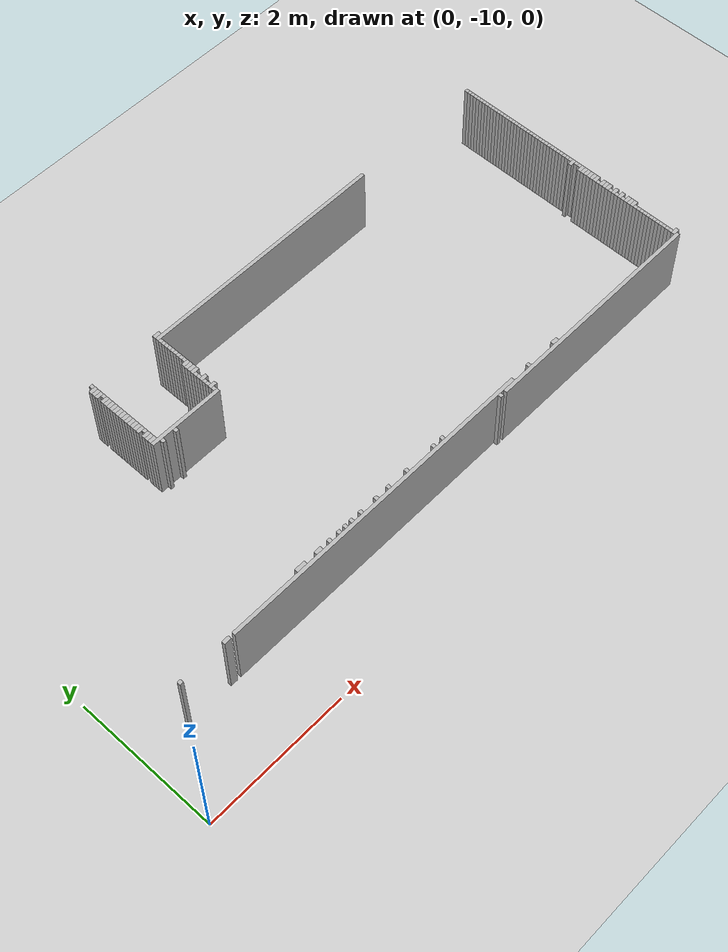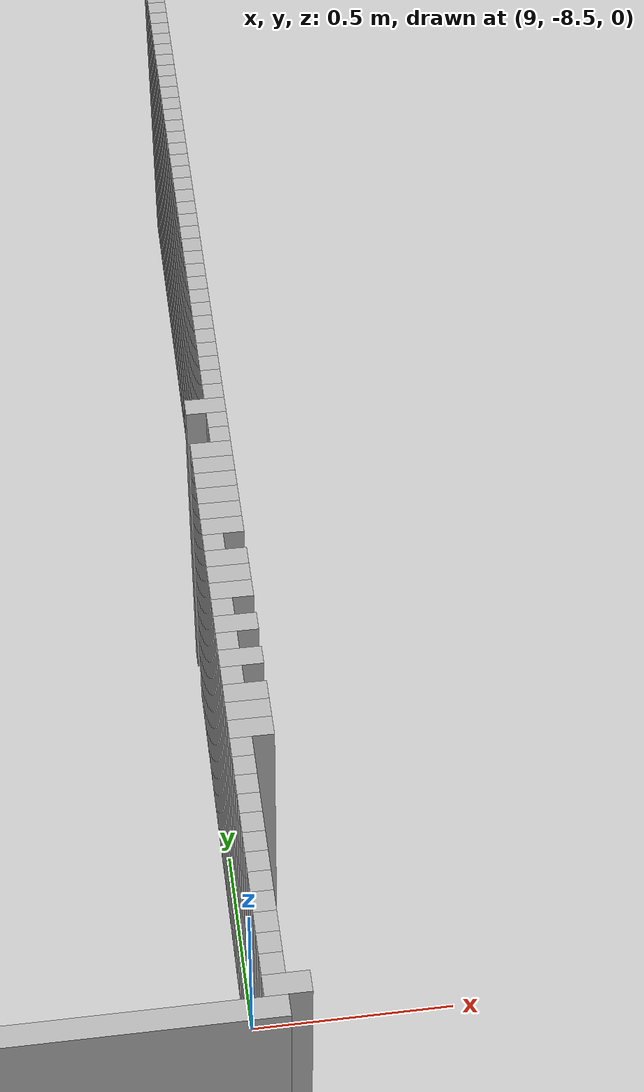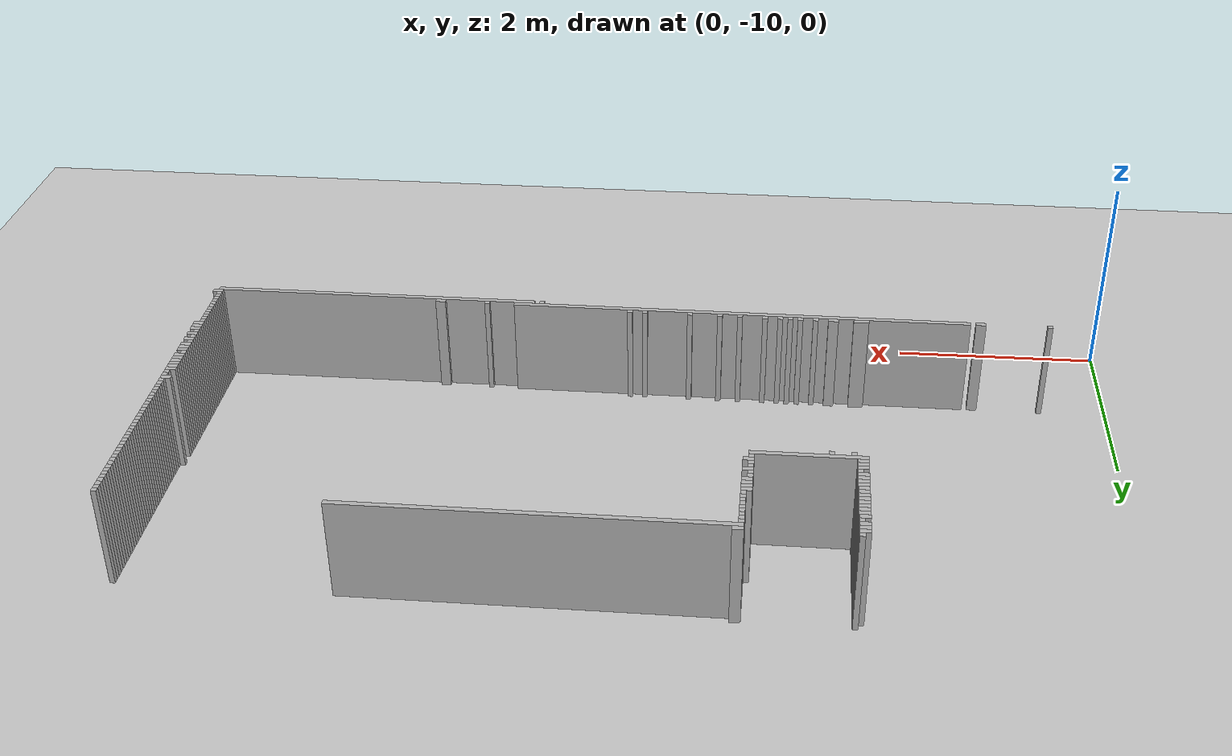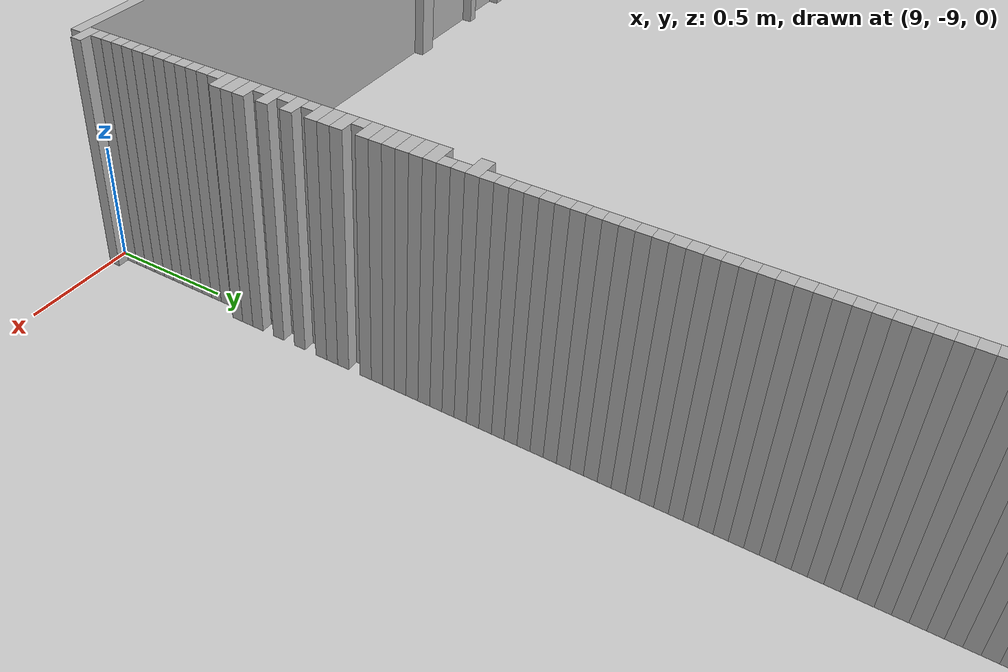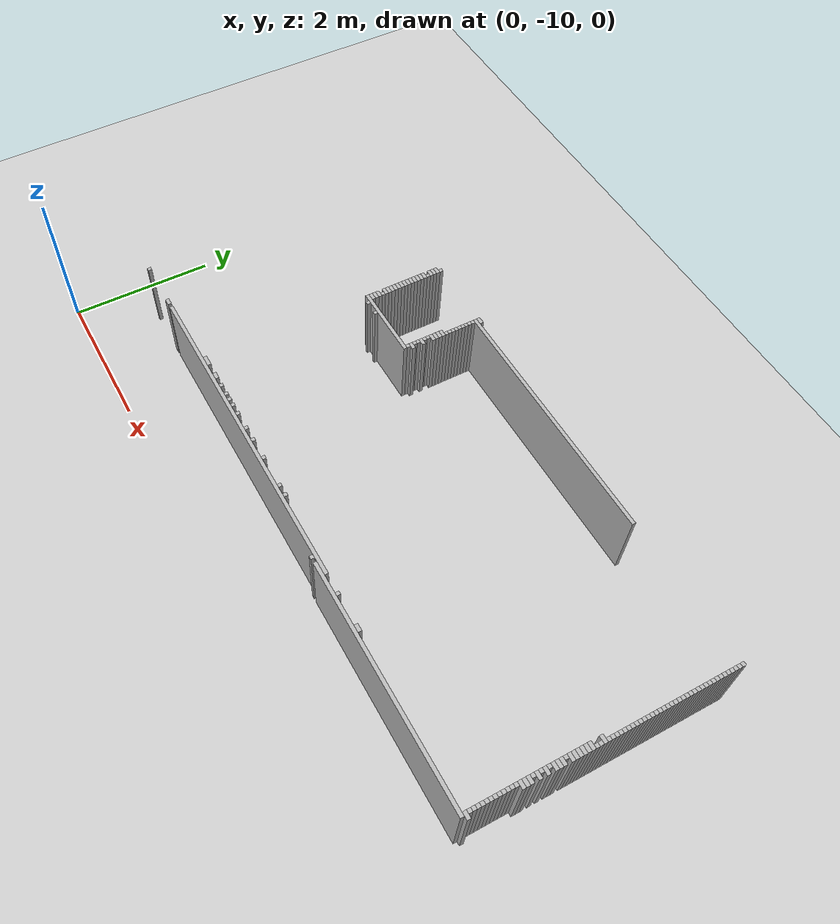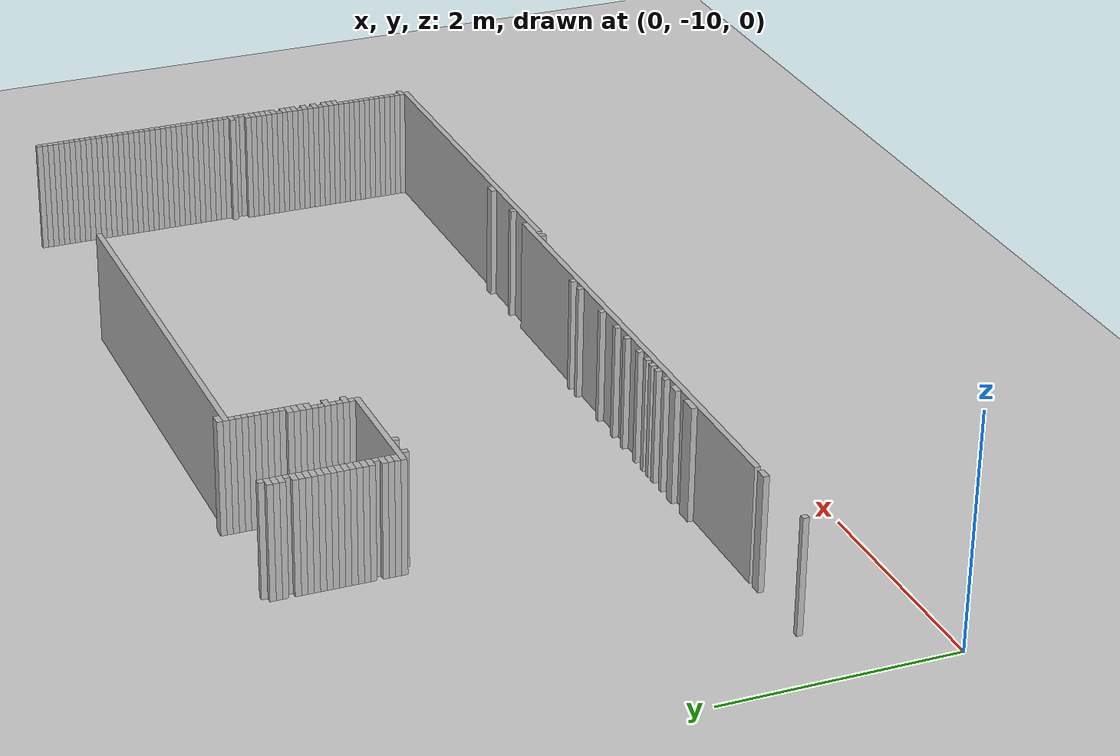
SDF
<sdf version="1.6">
 <world name="udh1_world">
  <include><uri>model://ground_plane</uri></include>
  <include><uri>model://sun</uri></include>
  <model name="wall_2132">
   <static>true</static>
   <pose>2.5550000000000015 -5.48 0.5 0 0 0</pose>
   <link name="link">
    <collision name="col"><geometry><box><size>0.05 0.05 1</size></box></geometry></collision>
    <visual name="vis"><geometry><box><size>0.05 0.05 1</size></box></geometry></visual>
   </link>
  </model>
  <model name="wall_2133">
   <static>true</static>
   <pose>3.580000000000002 -5.48 0.5 0 0 0</pose>
   <link name="link">
    <collision name="col"><geometry><box><size>0.1 0.05 1</size></box></geometry></collision>
    <visual name="vis"><geometry><box><size>0.1 0.05 1</size></box></geometry></visual>
   </link>
  </model>
  <model name="wall_2143">
   <static>true</static>
   <pose>2.530000000000001 -5.530000000000001 0.5 0 0 0</pose>
   <link name="link">
    <collision name="col"><geometry><box><size>0.1 0.05 1</size></box></geometry></collision>
    <visual name="vis"><geometry><box><size>0.1 0.05 1</size></box></geometry></visual>
   </link>
  </model>
  <model name="wall_2144">
   <static>true</static>
   <pose>5.3050000000000015 -5.530000000000001 0.5 0 0 0</pose>
   <link name="link">
    <collision name="col"><geometry><box><size>3.5500000000000003 0.05 1</size></box></geometry></collision>
    <visual name="vis"><geometry><box><size>3.5500000000000003 0.05 1</size></box></geometry></visual>
   </link>
  </model>
  <model name="wall_2145">
   <static>true</static>
   <pose>9.055 -5.530000000000001 0.5 0 0 0</pose>
   <link name="link">
    <collision name="col"><geometry><box><size>0.05 0.05 1</size></box></geometry></collision>
    <visual name="vis"><geometry><box><size>0.05 0.05 1</size></box></geometry></visual>
   </link>
  </model>
  <model name="wall_2151">
   <static>true</static>
   <pose>2.530000000000001 -5.58 0.5 0 0 0</pose>
   <link name="link">
    <collision name="col"><geometry><box><size>0.1 0.05 1</size></box></geometry></collision>
    <visual name="vis"><geometry><box><size>0.1 0.05 1</size></box></geometry></visual>
   </link>
  </model>
  <model name="wall_2152">
   <static>true</static>
   <pose>3.5550000000000015 -5.58 0.5 0 0 0</pose>
   <link name="link">
    <collision name="col"><geometry><box><size>0.05 0.05 1</size></box></geometry></collision>
    <visual name="vis"><geometry><box><size>0.05 0.05 1</size></box></geometry></visual>
   </link>
  </model>
  <model name="wall_2153">
   <static>true</static>
   <pose>9.055 -5.58 0.5 0 0 0</pose>
   <link name="link">
    <collision name="col"><geometry><box><size>0.05 0.05 1</size></box></geometry></collision>
    <visual name="vis"><geometry><box><size>0.05 0.05 1</size></box></geometry></visual>
   </link>
  </model>
  <model name="wall_2159">
   <static>true</static>
   <pose>2.530000000000001 -5.630000000000001 0.5 0 0 0</pose>
   <link name="link">
    <collision name="col"><geometry><box><size>0.1 0.05 1</size></box></geometry></collision>
    <visual name="vis"><geometry><box><size>0.1 0.05 1</size></box></geometry></visual>
   </link>
  </model>
  <model name="wall_2160">
   <static>true</static>
   <pose>3.5550000000000015 -5.630000000000001 0.5 0 0 0</pose>
   <link name="link">
    <collision name="col"><geometry><box><size>0.05 0.05 1</size></box></geometry></collision>
    <visual name="vis"><geometry><box><size>0.05 0.05 1</size></box></geometry></visual>
   </link>
  </model>
  <model name="wall_2161">
   <static>true</static>
   <pose>9.055 -5.630000000000001 0.5 0 0 0</pose>
   <link name="link">
    <collision name="col"><geometry><box><size>0.05 0.05 1</size></box></geometry></collision>
    <visual name="vis"><geometry><box><size>0.05 0.05 1</size></box></geometry></visual>
   </link>
  </model>
  <model name="wall_2167">
   <static>true</static>
   <pose>2.5550000000000015 -5.680000000000001 0.5 0 0 0</pose>
   <link name="link">
    <collision name="col"><geometry><box><size>0.05 0.05 1</size></box></geometry></collision>
    <visual name="vis"><geometry><box><size>0.05 0.05 1</size></box></geometry></visual>
   </link>
  </model>
  <model name="wall_2168">
   <static>true</static>
   <pose>3.5550000000000015 -5.680000000000001 0.5 0 0 0</pose>
   <link name="link">
    <collision name="col"><geometry><box><size>0.05 0.05 1</size></box></geometry></collision>
    <visual name="vis"><geometry><box><size>0.05 0.05 1</size></box></geometry></visual>
   </link>
  </model>
  <model name="wall_2169">
   <static>true</static>
   <pose>9.055 -5.680000000000001 0.5 0 0 0</pose>
   <link name="link">
    <collision name="col"><geometry><box><size>0.05 0.05 1</size></box></geometry></collision>
    <visual name="vis"><geometry><box><size>0.05 0.05 1</size></box></geometry></visual>
   </link>
  </model>
  <model name="wall_2175">
   <static>true</static>
   <pose>2.530000000000001 -5.73 0.5 0 0 0</pose>
   <link name="link">
    <collision name="col"><geometry><box><size>0.1 0.05 1</size></box></geometry></collision>
    <visual name="vis"><geometry><box><size>0.1 0.05 1</size></box></geometry></visual>
   </link>
  </model>
  <model name="wall_2176">
   <static>true</static>
   <pose>3.5550000000000015 -5.73 0.5 0 0 0</pose>
   <link name="link">
    <collision name="col"><geometry><box><size>0.05 0.05 1</size></box></geometry></collision>
    <visual name="vis"><geometry><box><size>0.05 0.05 1</size></box></geometry></visual>
   </link>
  </model>
  <model name="wall_2177">
   <static>true</static>
   <pose>9.055 -5.73 0.5 0 0 0</pose>
   <link name="link">
    <collision name="col"><geometry><box><size>0.05 0.05 1</size></box></geometry></collision>
    <visual name="vis"><geometry><box><size>0.05 0.05 1</size></box></geometry></visual>
   </link>
  </model>
  <model name="wall_2183">
   <static>true</static>
   <pose>2.530000000000001 -5.780000000000001 0.5 0 0 0</pose>
   <link name="link">
    <collision name="col"><geometry><box><size>0.1 0.05 1</size></box></geometry></collision>
    <visual name="vis"><geometry><box><size>0.1 0.05 1</size></box></geometry></visual>
   </link>
  </model>
  <model name="wall_2184">
   <static>true</static>
   <pose>3.5550000000000015 -5.780000000000001 0.5 0 0 0</pose>
   <link name="link">
    <collision name="col"><geometry><box><size>0.05 0.05 1</size></box></geometry></collision>
    <visual name="vis"><geometry><box><size>0.05 0.05 1</size></box></geometry></visual>
   </link>
  </model>
  <model name="wall_2185">
   <static>true</static>
   <pose>9.055 -5.780000000000001 0.5 0 0 0</pose>
   <link name="link">
    <collision name="col"><geometry><box><size>0.05 0.05 1</size></box></geometry></collision>
    <visual name="vis"><geometry><box><size>0.05 0.05 1</size></box></geometry></visual>
   </link>
  </model>
  <model name="wall_2191">
   <static>true</static>
   <pose>2.530000000000001 -5.83 0.5 0 0 0</pose>
   <link name="link">
    <collision name="col"><geometry><box><size>0.1 0.05 1</size></box></geometry></collision>
    <visual name="vis"><geometry><box><size>0.1 0.05 1</size></box></geometry></visual>
   </link>
  </model>
  <model name="wall_2192">
   <static>true</static>
   <pose>3.5550000000000015 -5.83 0.5 0 0 0</pose>
   <link name="link">
    <collision name="col"><geometry><box><size>0.05 0.05 1</size></box></geometry></collision>
    <visual name="vis"><geometry><box><size>0.05 0.05 1</size></box></geometry></visual>
   </link>
  </model>
  <model name="wall_2193">
   <static>true</static>
   <pose>9.055 -5.83 0.5 0 0 0</pose>
   <link name="link">
    <collision name="col"><geometry><box><size>0.05 0.05 1</size></box></geometry></collision>
    <visual name="vis"><geometry><box><size>0.05 0.05 1</size></box></geometry></visual>
   </link>
  </model>
  <model name="wall_2199">
   <static>true</static>
   <pose>2.530000000000001 -5.880000000000001 0.5 0 0 0</pose>
   <link name="link">
    <collision name="col"><geometry><box><size>0.1 0.05 1</size></box></geometry></collision>
    <visual name="vis"><geometry><box><size>0.1 0.05 1</size></box></geometry></visual>
   </link>
  </model>
  <model name="wall_2200">
   <static>true</static>
   <pose>3.5550000000000015 -5.880000000000001 0.5 0 0 0</pose>
   <link name="link">
    <collision name="col"><geometry><box><size>0.05 0.05 1</size></box></geometry></collision>
    <visual name="vis"><geometry><box><size>0.05 0.05 1</size></box></geometry></visual>
   </link>
  </model>
  <model name="wall_2201">
   <static>true</static>
   <pose>9.055 -5.880000000000001 0.5 0 0 0</pose>
   <link name="link">
    <collision name="col"><geometry><box><size>0.05 0.05 1</size></box></geometry></collision>
    <visual name="vis"><geometry><box><size>0.05 0.05 1</size></box></geometry></visual>
   </link>
  </model>
  <model name="wall_2207">
   <static>true</static>
   <pose>2.530000000000001 -5.930000000000001 0.5 0 0 0</pose>
   <link name="link">
    <collision name="col"><geometry><box><size>0.1 0.05 1</size></box></geometry></collision>
    <visual name="vis"><geometry><box><size>0.1 0.05 1</size></box></geometry></visual>
   </link>
  </model>
  <model name="wall_2208">
   <static>true</static>
   <pose>3.5550000000000015 -5.930000000000001 0.5 0 0 0</pose>
   <link name="link">
    <collision name="col"><geometry><box><size>0.05 0.05 1</size></box></geometry></collision>
    <visual name="vis"><geometry><box><size>0.05 0.05 1</size></box></geometry></visual>
   </link>
  </model>
  <model name="wall_2209">
   <static>true</static>
   <pose>9.055 -5.930000000000001 0.5 0 0 0</pose>
   <link name="link">
    <collision name="col"><geometry><box><size>0.05 0.05 1</size></box></geometry></collision>
    <visual name="vis"><geometry><box><size>0.05 0.05 1</size></box></geometry></visual>
   </link>
  </model>
  <model name="wall_2215">
   <static>true</static>
   <pose>2.530000000000001 -5.98 0.5 0 0 0</pose>
   <link name="link">
    <collision name="col"><geometry><box><size>0.1 0.05 1</size></box></geometry></collision>
    <visual name="vis"><geometry><box><size>0.1 0.05 1</size></box></geometry></visual>
   </link>
  </model>
  <model name="wall_2216">
   <static>true</static>
   <pose>3.5550000000000015 -5.98 0.5 0 0 0</pose>
   <link name="link">
    <collision name="col"><geometry><box><size>0.05 0.05 1</size></box></geometry></collision>
    <visual name="vis"><geometry><box><size>0.05 0.05 1</size></box></geometry></visual>
   </link>
  </model>
  <model name="wall_2217">
   <static>true</static>
   <pose>9.055 -5.98 0.5 0 0 0</pose>
   <link name="link">
    <collision name="col"><geometry><box><size>0.05 0.05 1</size></box></geometry></collision>
    <visual name="vis"><geometry><box><size>0.05 0.05 1</size></box></geometry></visual>
   </link>
  </model>
  <model name="wall_2223">
   <static>true</static>
   <pose>2.530000000000001 -6.030000000000001 0.5 0 0 0</pose>
   <link name="link">
    <collision name="col"><geometry><box><size>0.1 0.05 1</size></box></geometry></collision>
    <visual name="vis"><geometry><box><size>0.1 0.05 1</size></box></geometry></visual>
   </link>
  </model>
  <model name="wall_2224">
   <static>true</static>
   <pose>3.530000000000001 -6.030000000000001 0.5 0 0 0</pose>
   <link name="link">
    <collision name="col"><geometry><box><size>0.1 0.05 1</size></box></geometry></collision>
    <visual name="vis"><geometry><box><size>0.1 0.05 1</size></box></geometry></visual>
   </link>
  </model>
  <model name="wall_2225">
   <static>true</static>
   <pose>9.055 -6.030000000000001 0.5 0 0 0</pose>
   <link name="link">
    <collision name="col"><geometry><box><size>0.05 0.05 1</size></box></geometry></collision>
    <visual name="vis"><geometry><box><size>0.05 0.05 1</size></box></geometry></visual>
   </link>
  </model>
  <model name="wall_2231">
   <static>true</static>
   <pose>2.530000000000001 -6.08 0.5 0 0 0</pose>
   <link name="link">
    <collision name="col"><geometry><box><size>0.1 0.05 1</size></box></geometry></collision>
    <visual name="vis"><geometry><box><size>0.1 0.05 1</size></box></geometry></visual>
   </link>
  </model>
  <model name="wall_2232">
   <static>true</static>
   <pose>3.530000000000001 -6.08 0.5 0 0 0</pose>
   <link name="link">
    <collision name="col"><geometry><box><size>0.1 0.05 1</size></box></geometry></collision>
    <visual name="vis"><geometry><box><size>0.1 0.05 1</size></box></geometry></visual>
   </link>
  </model>
  <model name="wall_2233">
   <static>true</static>
   <pose>9.055 -6.08 0.5 0 0 0</pose>
   <link name="link">
    <collision name="col"><geometry><box><size>0.05 0.05 1</size></box></geometry></collision>
    <visual name="vis"><geometry><box><size>0.05 0.05 1</size></box></geometry></visual>
   </link>
  </model>
  <model name="wall_2239">
   <static>true</static>
   <pose>2.530000000000001 -6.130000000000001 0.5 0 0 0</pose>
   <link name="link">
    <collision name="col"><geometry><box><size>0.1 0.05 1</size></box></geometry></collision>
    <visual name="vis"><geometry><box><size>0.1 0.05 1</size></box></geometry></visual>
   </link>
  </model>
  <model name="wall_2240">
   <static>true</static>
   <pose>3.530000000000001 -6.130000000000001 0.5 0 0 0</pose>
   <link name="link">
    <collision name="col"><geometry><box><size>0.1 0.05 1</size></box></geometry></collision>
    <visual name="vis"><geometry><box><size>0.1 0.05 1</size></box></geometry></visual>
   </link>
  </model>
  <model name="wall_2241">
   <static>true</static>
   <pose>9.055 -6.130000000000001 0.5 0 0 0</pose>
   <link name="link">
    <collision name="col"><geometry><box><size>0.05 0.05 1</size></box></geometry></collision>
    <visual name="vis"><geometry><box><size>0.05 0.05 1</size></box></geometry></visual>
   </link>
  </model>
  <model name="wall_2247">
   <static>true</static>
   <pose>2.530000000000001 -6.180000000000001 0.5 0 0 0</pose>
   <link name="link">
    <collision name="col"><geometry><box><size>0.1 0.05 1</size></box></geometry></collision>
    <visual name="vis"><geometry><box><size>0.1 0.05 1</size></box></geometry></visual>
   </link>
  </model>
  <model name="wall_2248">
   <static>true</static>
   <pose>3.530000000000001 -6.180000000000001 0.5 0 0 0</pose>
   <link name="link">
    <collision name="col"><geometry><box><size>0.1 0.05 1</size></box></geometry></collision>
    <visual name="vis"><geometry><box><size>0.1 0.05 1</size></box></geometry></visual>
   </link>
  </model>
  <model name="wall_2249">
   <static>true</static>
   <pose>9.055 -6.180000000000001 0.5 0 0 0</pose>
   <link name="link">
    <collision name="col"><geometry><box><size>0.05 0.05 1</size></box></geometry></collision>
    <visual name="vis"><geometry><box><size>0.05 0.05 1</size></box></geometry></visual>
   </link>
  </model>
  <model name="wall_2255">
   <static>true</static>
   <pose>2.530000000000001 -6.23 0.5 0 0 0</pose>
   <link name="link">
    <collision name="col"><geometry><box><size>0.1 0.05 1</size></box></geometry></collision>
    <visual name="vis"><geometry><box><size>0.1 0.05 1</size></box></geometry></visual>
   </link>
  </model>
  <model name="wall_2256">
   <static>true</static>
   <pose>3.505000000000001 -6.23 0.5 0 0 0</pose>
   <link name="link">
    <collision name="col"><geometry><box><size>0.05 0.05 1</size></box></geometry></collision>
    <visual name="vis"><geometry><box><size>0.05 0.05 1</size></box></geometry></visual>
   </link>
  </model>
  <model name="wall_2257">
   <static>true</static>
   <pose>9.055 -6.23 0.5 0 0 0</pose>
   <link name="link">
    <collision name="col"><geometry><box><size>0.05 0.05 1</size></box></geometry></collision>
    <visual name="vis"><geometry><box><size>0.05 0.05 1</size></box></geometry></visual>
   </link>
  </model>
  <model name="wall_2263">
   <static>true</static>
   <pose>2.530000000000001 -6.280000000000001 0.5 0 0 0</pose>
   <link name="link">
    <collision name="col"><geometry><box><size>0.1 0.05 1</size></box></geometry></collision>
    <visual name="vis"><geometry><box><size>0.1 0.05 1</size></box></geometry></visual>
   </link>
  </model>
  <model name="wall_2264">
   <static>true</static>
   <pose>3.505000000000001 -6.280000000000001 0.5 0 0 0</pose>
   <link name="link">
    <collision name="col"><geometry><box><size>0.05 0.05 1</size></box></geometry></collision>
    <visual name="vis"><geometry><box><size>0.05 0.05 1</size></box></geometry></visual>
   </link>
  </model>
  <model name="wall_2265">
   <static>true</static>
   <pose>9.055 -6.280000000000001 0.5 0 0 0</pose>
   <link name="link">
    <collision name="col"><geometry><box><size>0.05 0.05 1</size></box></geometry></collision>
    <visual name="vis"><geometry><box><size>0.05 0.05 1</size></box></geometry></visual>
   </link>
  </model>
  <model name="wall_2271">
   <static>true</static>
   <pose>2.530000000000001 -6.33 0.5 0 0 0</pose>
   <link name="link">
    <collision name="col"><geometry><box><size>0.1 0.05 1</size></box></geometry></collision>
    <visual name="vis"><geometry><box><size>0.1 0.05 1</size></box></geometry></visual>
   </link>
  </model>
  <model name="wall_2272">
   <static>true</static>
   <pose>3.530000000000001 -6.33 0.5 0 0 0</pose>
   <link name="link">
    <collision name="col"><geometry><box><size>0.1 0.05 1</size></box></geometry></collision>
    <visual name="vis"><geometry><box><size>0.1 0.05 1</size></box></geometry></visual>
   </link>
  </model>
  <model name="wall_2273">
   <static>true</static>
   <pose>9.055 -6.33 0.5 0 0 0</pose>
   <link name="link">
    <collision name="col"><geometry><box><size>0.05 0.05 1</size></box></geometry></collision>
    <visual name="vis"><geometry><box><size>0.05 0.05 1</size></box></geometry></visual>
   </link>
  </model>
  <model name="wall_2279">
   <static>true</static>
   <pose>2.5550000000000015 -6.380000000000001 0.5 0 0 0</pose>
   <link name="link">
    <collision name="col"><geometry><box><size>0.05 0.05 1</size></box></geometry></collision>
    <visual name="vis"><geometry><box><size>0.05 0.05 1</size></box></geometry></visual>
   </link>
  </model>
  <model name="wall_2280">
   <static>true</static>
   <pose>3.505000000000001 -6.380000000000001 0.5 0 0 0</pose>
   <link name="link">
    <collision name="col"><geometry><box><size>0.05 0.05 1</size></box></geometry></collision>
    <visual name="vis"><geometry><box><size>0.05 0.05 1</size></box></geometry></visual>
   </link>
  </model>
  <model name="wall_2281">
   <static>true</static>
   <pose>9.055 -6.380000000000001 0.5 0 0 0</pose>
   <link name="link">
    <collision name="col"><geometry><box><size>0.05 0.05 1</size></box></geometry></collision>
    <visual name="vis"><geometry><box><size>0.05 0.05 1</size></box></geometry></visual>
   </link>
  </model>
  <model name="wall_2286">
   <static>true</static>
   <pose>2.530000000000001 -6.430000000000001 0.5 0 0 0</pose>
   <link name="link">
    <collision name="col"><geometry><box><size>0.1 0.05 1</size></box></geometry></collision>
    <visual name="vis"><geometry><box><size>0.1 0.05 1</size></box></geometry></visual>
   </link>
  </model>
  <model name="wall_2287">
   <static>true</static>
   <pose>3.505000000000001 -6.430000000000001 0.5 0 0 0</pose>
   <link name="link">
    <collision name="col"><geometry><box><size>0.05 0.05 1</size></box></geometry></collision>
    <visual name="vis"><geometry><box><size>0.05 0.05 1</size></box></geometry></visual>
   </link>
  </model>
  <model name="wall_2288">
   <static>true</static>
   <pose>9.055 -6.430000000000001 0.5 0 0 0</pose>
   <link name="link">
    <collision name="col"><geometry><box><size>0.05 0.05 1</size></box></geometry></collision>
    <visual name="vis"><geometry><box><size>0.05 0.05 1</size></box></geometry></visual>
   </link>
  </model>
  <model name="wall_2292">
   <static>true</static>
   <pose>2.530000000000001 -6.48 0.5 0 0 0</pose>
   <link name="link">
    <collision name="col"><geometry><box><size>0.1 0.05 1</size></box></geometry></collision>
    <visual name="vis"><geometry><box><size>0.1 0.05 1</size></box></geometry></visual>
   </link>
  </model>
  <model name="wall_2293">
   <static>true</static>
   <pose>3.530000000000001 -6.48 0.5 0 0 0</pose>
   <link name="link">
    <collision name="col"><geometry><box><size>0.1 0.05 1</size></box></geometry></collision>
    <visual name="vis"><geometry><box><size>0.1 0.05 1</size></box></geometry></visual>
   </link>
  </model>
  <model name="wall_2294">
   <static>true</static>
   <pose>9.055 -6.48 0.5 0 0 0</pose>
   <link name="link">
    <collision name="col"><geometry><box><size>0.05 0.05 1</size></box></geometry></collision>
    <visual name="vis"><geometry><box><size>0.05 0.05 1</size></box></geometry></visual>
   </link>
  </model>
  <model name="wall_2298">
   <static>true</static>
   <pose>2.530000000000001 -6.530000000000001 0.5 0 0 0</pose>
   <link name="link">
    <collision name="col"><geometry><box><size>0.1 0.05 1</size></box></geometry></collision>
    <visual name="vis"><geometry><box><size>0.1 0.05 1</size></box></geometry></visual>
   </link>
  </model>
  <model name="wall_2299">
   <static>true</static>
   <pose>3.505000000000001 -6.530000000000001 0.5 0 0 0</pose>
   <link name="link">
    <collision name="col"><geometry><box><size>0.05 0.05 1</size></box></geometry></collision>
    <visual name="vis"><geometry><box><size>0.05 0.05 1</size></box></geometry></visual>
   </link>
  </model>
  <model name="wall_2300">
   <static>true</static>
   <pose>9.055 -6.530000000000001 0.5 0 0 0</pose>
   <link name="link">
    <collision name="col"><geometry><box><size>0.05 0.05 1</size></box></geometry></collision>
    <visual name="vis"><geometry><box><size>0.05 0.05 1</size></box></geometry></visual>
   </link>
  </model>
  <model name="wall_2304">
   <static>true</static>
   <pose>3.005000000000001 -6.58 0.5 0 0 0</pose>
   <link name="link">
    <collision name="col"><geometry><box><size>1.05 0.05 1</size></box></geometry></collision>
    <visual name="vis"><geometry><box><size>1.05 0.05 1</size></box></geometry></visual>
   </link>
  </model>
  <model name="wall_2305">
   <static>true</static>
   <pose>9.055 -6.58 0.5 0 0 0</pose>
   <link name="link">
    <collision name="col"><geometry><box><size>0.05 0.05 1</size></box></geometry></collision>
    <visual name="vis"><geometry><box><size>0.05 0.05 1</size></box></geometry></visual>
   </link>
  </model>
  <model name="wall_2309">
   <static>true</static>
   <pose>2.6050000000000004 -6.630000000000001 0.5 0 0 0</pose>
   <link name="link">
    <collision name="col"><geometry><box><size>0.05 0.05 1</size></box></geometry></collision>
    <visual name="vis"><geometry><box><size>0.05 0.05 1</size></box></geometry></visual>
   </link>
  </model>
  <model name="wall_2310">
   <static>true</static>
   <pose>2.8050000000000015 -6.630000000000001 0.5 0 0 0</pose>
   <link name="link">
    <collision name="col"><geometry><box><size>0.05 0.05 1</size></box></geometry></collision>
    <visual name="vis"><geometry><box><size>0.05 0.05 1</size></box></geometry></visual>
   </link>
  </model>
  <model name="wall_2311">
   <static>true</static>
   <pose>9.055 -6.630000000000001 0.5 0 0 0</pose>
   <link name="link">
    <collision name="col"><geometry><box><size>0.05 0.05 1</size></box></geometry></collision>
    <visual name="vis"><geometry><box><size>0.05 0.05 1</size></box></geometry></visual>
   </link>
  </model>
  <model name="wall_2315">
   <static>true</static>
   <pose>9.055 -6.680000000000001 0.5 0 0 0</pose>
   <link name="link">
    <collision name="col"><geometry><box><size>0.05 0.05 1</size></box></geometry></collision>
    <visual name="vis"><geometry><box><size>0.05 0.05 1</size></box></geometry></visual>
   </link>
  </model>
  <model name="wall_2319">
   <static>true</static>
   <pose>9.055 -6.73 0.5 0 0 0</pose>
   <link name="link">
    <collision name="col"><geometry><box><size>0.05 0.05 1</size></box></geometry></collision>
    <visual name="vis"><geometry><box><size>0.05 0.05 1</size></box></geometry></visual>
   </link>
  </model>
  <model name="wall_2323">
   <static>true</static>
   <pose>9.055 -6.780000000000001 0.5 0 0 0</pose>
   <link name="link">
    <collision name="col"><geometry><box><size>0.05 0.05 1</size></box></geometry></collision>
    <visual name="vis"><geometry><box><size>0.05 0.05 1</size></box></geometry></visual>
   </link>
  </model>
  <model name="wall_2327">
   <static>true</static>
   <pose>9.055 -6.83 0.5 0 0 0</pose>
   <link name="link">
    <collision name="col"><geometry><box><size>0.05 0.05 1</size></box></geometry></collision>
    <visual name="vis"><geometry><box><size>0.05 0.05 1</size></box></geometry></visual>
   </link>
  </model>
  <model name="wall_2333">
   <static>true</static>
   <pose>9.055 -6.880000000000001 0.5 0 0 0</pose>
   <link name="link">
    <collision name="col"><geometry><box><size>0.05 0.05 1</size></box></geometry></collision>
    <visual name="vis"><geometry><box><size>0.05 0.05 1</size></box></geometry></visual>
   </link>
  </model>
  <model name="wall_2338">
   <static>true</static>
   <pose>9.055 -6.930000000000001 0.5 0 0 0</pose>
   <link name="link">
    <collision name="col"><geometry><box><size>0.05 0.05 1</size></box></geometry></collision>
    <visual name="vis"><geometry><box><size>0.05 0.05 1</size></box></geometry></visual>
   </link>
  </model>
  <model name="wall_2344">
   <static>true</static>
   <pose>9.055 -6.98 0.5 0 0 0</pose>
   <link name="link">
    <collision name="col"><geometry><box><size>0.05 0.05 1</size></box></geometry></collision>
    <visual name="vis"><geometry><box><size>0.05 0.05 1</size></box></geometry></visual>
   </link>
  </model>
  <model name="wall_2350">
   <static>true</static>
   <pose>9.055 -7.030000000000001 0.5 0 0 0</pose>
   <link name="link">
    <collision name="col"><geometry><box><size>0.05 0.05 1</size></box></geometry></collision>
    <visual name="vis"><geometry><box><size>0.05 0.05 1</size></box></geometry></visual>
   </link>
  </model>
  <model name="wall_2356">
   <static>true</static>
   <pose>9.055 -7.08 0.5 0 0 0</pose>
   <link name="link">
    <collision name="col"><geometry><box><size>0.05 0.05 1</size></box></geometry></collision>
    <visual name="vis"><geometry><box><size>0.05 0.05 1</size></box></geometry></visual>
   </link>
  </model>
  <model name="wall_2362">
   <static>true</static>
   <pose>9.055 -7.130000000000001 0.5 0 0 0</pose>
   <link name="link">
    <collision name="col"><geometry><box><size>0.05 0.05 1</size></box></geometry></collision>
    <visual name="vis"><geometry><box><size>0.05 0.05 1</size></box></geometry></visual>
   </link>
  </model>
  <model name="wall_2368">
   <static>true</static>
   <pose>9.055 -7.180000000000001 0.5 0 0 0</pose>
   <link name="link">
    <collision name="col"><geometry><box><size>0.05 0.05 1</size></box></geometry></collision>
    <visual name="vis"><geometry><box><size>0.05 0.05 1</size></box></geometry></visual>
   </link>
  </model>
  <model name="wall_2374">
   <static>true</static>
   <pose>9.055 -7.23 0.5 0 0 0</pose>
   <link name="link">
    <collision name="col"><geometry><box><size>0.05 0.05 1</size></box></geometry></collision>
    <visual name="vis"><geometry><box><size>0.05 0.05 1</size></box></geometry></visual>
   </link>
  </model>
  <model name="wall_2380">
   <static>true</static>
   <pose>9.055 -7.280000000000001 0.5 0 0 0</pose>
   <link name="link">
    <collision name="col"><geometry><box><size>0.05 0.05 1</size></box></geometry></collision>
    <visual name="vis"><geometry><box><size>0.05 0.05 1</size></box></geometry></visual>
   </link>
  </model>
  <model name="wall_2386">
   <static>true</static>
   <pose>9.030000000000001 -7.330000000000001 0.5 0 0 0</pose>
   <link name="link">
    <collision name="col"><geometry><box><size>0.1 0.05 1</size></box></geometry></collision>
    <visual name="vis"><geometry><box><size>0.1 0.05 1</size></box></geometry></visual>
   </link>
  </model>
  <model name="wall_2392">
   <static>true</static>
   <pose>9.055 -7.380000000000001 0.5 0 0 0</pose>
   <link name="link">
    <collision name="col"><geometry><box><size>0.05 0.05 1</size></box></geometry></collision>
    <visual name="vis"><geometry><box><size>0.05 0.05 1</size></box></geometry></visual>
   </link>
  </model>
  <model name="wall_2398">
   <static>true</static>
   <pose>9.055 -7.430000000000001 0.5 0 0 0</pose>
   <link name="link">
    <collision name="col"><geometry><box><size>0.05 0.05 1</size></box></geometry></collision>
    <visual name="vis"><geometry><box><size>0.05 0.05 1</size></box></geometry></visual>
   </link>
  </model>
  <model name="wall_2404">
   <static>true</static>
   <pose>9.030000000000001 -7.48 0.5 0 0 0</pose>
   <link name="link">
    <collision name="col"><geometry><box><size>0.1 0.05 1</size></box></geometry></collision>
    <visual name="vis"><geometry><box><size>0.1 0.05 1</size></box></geometry></visual>
   </link>
  </model>
  <model name="wall_2410">
   <static>true</static>
   <pose>9.030000000000001 -7.530000000000001 0.5 0 0 0</pose>
   <link name="link">
    <collision name="col"><geometry><box><size>0.1 0.05 1</size></box></geometry></collision>
    <visual name="vis"><geometry><box><size>0.1 0.05 1</size></box></geometry></visual>
   </link>
  </model>
  <model name="wall_2416">
   <static>true</static>
   <pose>9.030000000000001 -7.580000000000001 0.5 0 0 0</pose>
   <link name="link">
    <collision name="col"><geometry><box><size>0.1 0.05 1</size></box></geometry></collision>
    <visual name="vis"><geometry><box><size>0.1 0.05 1</size></box></geometry></visual>
   </link>
  </model>
  <model name="wall_2422">
   <static>true</static>
   <pose>9.030000000000001 -7.630000000000001 0.5 0 0 0</pose>
   <link name="link">
    <collision name="col"><geometry><box><size>0.1 0.05 1</size></box></geometry></collision>
    <visual name="vis"><geometry><box><size>0.1 0.05 1</size></box></geometry></visual>
   </link>
  </model>
  <model name="wall_2428">
   <static>true</static>
   <pose>9.030000000000001 -7.680000000000001 0.5 0 0 0</pose>
   <link name="link">
    <collision name="col"><geometry><box><size>0.1 0.05 1</size></box></geometry></collision>
    <visual name="vis"><geometry><box><size>0.1 0.05 1</size></box></geometry></visual>
   </link>
  </model>
  <model name="wall_2434">
   <static>true</static>
   <pose>9.030000000000001 -7.73 0.5 0 0 0</pose>
   <link name="link">
    <collision name="col"><geometry><box><size>0.1 0.05 1</size></box></geometry></collision>
    <visual name="vis"><geometry><box><size>0.1 0.05 1</size></box></geometry></visual>
   </link>
  </model>
  <model name="wall_2440">
   <static>true</static>
   <pose>9.005000000000003 -7.780000000000001 0.5 0 0 0</pose>
   <link name="link">
    <collision name="col"><geometry><box><size>0.05 0.05 1</size></box></geometry></collision>
    <visual name="vis"><geometry><box><size>0.05 0.05 1</size></box></geometry></visual>
   </link>
  </model>
  <model name="wall_2446">
   <static>true</static>
   <pose>9.030000000000001 -7.830000000000001 0.5 0 0 0</pose>
   <link name="link">
    <collision name="col"><geometry><box><size>0.1 0.05 1</size></box></geometry></collision>
    <visual name="vis"><geometry><box><size>0.1 0.05 1</size></box></geometry></visual>
   </link>
  </model>
  <model name="wall_2452">
   <static>true</static>
   <pose>9.030000000000001 -7.880000000000001 0.5 0 0 0</pose>
   <link name="link">
    <collision name="col"><geometry><box><size>0.1 0.05 1</size></box></geometry></collision>
    <visual name="vis"><geometry><box><size>0.1 0.05 1</size></box></geometry></visual>
   </link>
  </model>
  <model name="wall_2457">
   <static>true</static>
   <pose>9.030000000000001 -7.930000000000001 0.5 0 0 0</pose>
   <link name="link">
    <collision name="col"><geometry><box><size>0.1 0.05 1</size></box></geometry></collision>
    <visual name="vis"><geometry><box><size>0.1 0.05 1</size></box></geometry></visual>
   </link>
  </model>
  <model name="wall_2462">
   <static>true</static>
   <pose>9.005000000000003 -7.98 0.5 0 0 0</pose>
   <link name="link">
    <collision name="col"><geometry><box><size>0.05 0.05 1</size></box></geometry></collision>
    <visual name="vis"><geometry><box><size>0.05 0.05 1</size></box></geometry></visual>
   </link>
  </model>
  <model name="wall_2466">
   <static>true</static>
   <pose>9.030000000000001 -8.030000000000001 0.5 0 0 0</pose>
   <link name="link">
    <collision name="col"><geometry><box><size>0.1 0.05 1</size></box></geometry></collision>
    <visual name="vis"><geometry><box><size>0.1 0.05 1</size></box></geometry></visual>
   </link>
  </model>
  <model name="wall_2470">
   <static>true</static>
   <pose>9.005000000000003 -8.08 0.5 0 0 0</pose>
   <link name="link">
    <collision name="col"><geometry><box><size>0.05 0.05 1</size></box></geometry></collision>
    <visual name="vis"><geometry><box><size>0.05 0.05 1</size></box></geometry></visual>
   </link>
  </model>
  <model name="wall_2474">
   <static>true</static>
   <pose>9.030000000000001 -8.13 0.5 0 0 0</pose>
   <link name="link">
    <collision name="col"><geometry><box><size>0.1 0.05 1</size></box></geometry></collision>
    <visual name="vis"><geometry><box><size>0.1 0.05 1</size></box></geometry></visual>
   </link>
  </model>
  <model name="wall_2478">
   <static>true</static>
   <pose>9.005000000000003 -8.180000000000001 0.5 0 0 0</pose>
   <link name="link">
    <collision name="col"><geometry><box><size>0.05 0.05 1</size></box></geometry></collision>
    <visual name="vis"><geometry><box><size>0.05 0.05 1</size></box></geometry></visual>
   </link>
  </model>
  <model name="wall_2482">
   <static>true</static>
   <pose>9.030000000000001 -8.23 0.5 0 0 0</pose>
   <link name="link">
    <collision name="col"><geometry><box><size>0.1 0.05 1</size></box></geometry></collision>
    <visual name="vis"><geometry><box><size>0.1 0.05 1</size></box></geometry></visual>
   </link>
  </model>
  <model name="wall_2486">
   <static>true</static>
   <pose>9.030000000000001 -8.280000000000001 0.5 0 0 0</pose>
   <link name="link">
    <collision name="col"><geometry><box><size>0.1 0.05 1</size></box></geometry></collision>
    <visual name="vis"><geometry><box><size>0.1 0.05 1</size></box></geometry></visual>
   </link>
  </model>
  <model name="wall_2490">
   <static>true</static>
   <pose>9.030000000000001 -8.33 0.5 0 0 0</pose>
   <link name="link">
    <collision name="col"><geometry><box><size>0.1 0.05 1</size></box></geometry></collision>
    <visual name="vis"><geometry><box><size>0.1 0.05 1</size></box></geometry></visual>
   </link>
  </model>
  <model name="wall_2494">
   <static>true</static>
   <pose>9.005000000000003 -8.38 0.5 0 0 0</pose>
   <link name="link">
    <collision name="col"><geometry><box><size>0.05 0.05 1</size></box></geometry></collision>
    <visual name="vis"><geometry><box><size>0.05 0.05 1</size></box></geometry></visual>
   </link>
  </model>
  <model name="wall_2498">
   <static>true</static>
   <pose>9.005000000000003 -8.430000000000001 0.5 0 0 0</pose>
   <link name="link">
    <collision name="col"><geometry><box><size>0.05 0.05 1</size></box></geometry></collision>
    <visual name="vis"><geometry><box><size>0.05 0.05 1</size></box></geometry></visual>
   </link>
  </model>
  <model name="wall_2502">
   <static>true</static>
   <pose>9.005000000000003 -8.48 0.5 0 0 0</pose>
   <link name="link">
    <collision name="col"><geometry><box><size>0.05 0.05 1</size></box></geometry></collision>
    <visual name="vis"><geometry><box><size>0.05 0.05 1</size></box></geometry></visual>
   </link>
  </model>
  <model name="wall_2506">
   <static>true</static>
   <pose>9.005000000000003 -8.530000000000001 0.5 0 0 0</pose>
   <link name="link">
    <collision name="col"><geometry><box><size>0.05 0.05 1</size></box></geometry></collision>
    <visual name="vis"><geometry><box><size>0.05 0.05 1</size></box></geometry></visual>
   </link>
  </model>
  <model name="wall_2510">
   <static>true</static>
   <pose>9.005000000000003 -8.58 0.5 0 0 0</pose>
   <link name="link">
    <collision name="col"><geometry><box><size>0.05 0.05 1</size></box></geometry></collision>
    <visual name="vis"><geometry><box><size>0.05 0.05 1</size></box></geometry></visual>
   </link>
  </model>
  <model name="wall_2514">
   <static>true</static>
   <pose>9.005000000000003 -8.63 0.5 0 0 0</pose>
   <link name="link">
    <collision name="col"><geometry><box><size>0.05 0.05 1</size></box></geometry></collision>
    <visual name="vis"><geometry><box><size>0.05 0.05 1</size></box></geometry></visual>
   </link>
  </model>
  <model name="wall_2518">
   <static>true</static>
   <pose>9.005000000000003 -8.680000000000001 0.5 0 0 0</pose>
   <link name="link">
    <collision name="col"><geometry><box><size>0.05 0.05 1</size></box></geometry></collision>
    <visual name="vis"><geometry><box><size>0.05 0.05 1</size></box></geometry></visual>
   </link>
  </model>
  <model name="wall_2522">
   <static>true</static>
   <pose>9.005000000000003 -8.73 0.5 0 0 0</pose>
   <link name="link">
    <collision name="col"><geometry><box><size>0.05 0.05 1</size></box></geometry></collision>
    <visual name="vis"><geometry><box><size>0.05 0.05 1</size></box></geometry></visual>
   </link>
  </model>
  <model name="wall_2526">
   <static>true</static>
   <pose>9.005000000000003 -8.780000000000001 0.5 0 0 0</pose>
   <link name="link">
    <collision name="col"><geometry><box><size>0.05 0.05 1</size></box></geometry></collision>
    <visual name="vis"><geometry><box><size>0.05 0.05 1</size></box></geometry></visual>
   </link>
  </model>
  <model name="wall_2530">
   <static>true</static>
   <pose>9.005000000000003 -8.83 0.5 0 0 0</pose>
   <link name="link">
    <collision name="col"><geometry><box><size>0.05 0.05 1</size></box></geometry></collision>
    <visual name="vis"><geometry><box><size>0.05 0.05 1</size></box></geometry></visual>
   </link>
  </model>
  <model name="wall_2545">
   <static>true</static>
   <pose>9.005000000000003 -8.88 0.5 0 0 0</pose>
   <link name="link">
    <collision name="col"><geometry><box><size>0.05 0.05 1</size></box></geometry></collision>
    <visual name="vis"><geometry><box><size>0.05 0.05 1</size></box></geometry></visual>
   </link>
  </model>
  <model name="wall_2551">
   <static>true</static>
   <pose>2.505000000000001 -8.930000000000001 0.5 0 0 0</pose>
   <link name="link">
    <collision name="col"><geometry><box><size>0.15000000000000002 0.05 1</size></box></geometry></collision>
    <visual name="vis"><geometry><box><size>0.15000000000000002 0.05 1</size></box></geometry></visual>
   </link>
  </model>
  <model name="wall_2552">
   <static>true</static>
   <pose>2.780000000000001 -8.930000000000001 0.5 0 0 0</pose>
   <link name="link">
    <collision name="col"><geometry><box><size>0.1 0.05 1</size></box></geometry></collision>
    <visual name="vis"><geometry><box><size>0.1 0.05 1</size></box></geometry></visual>
   </link>
  </model>
  <model name="wall_2553">
   <static>true</static>
   <pose>2.955000000000002 -8.930000000000001 0.5 0 0 0</pose>
   <link name="link">
    <collision name="col"><geometry><box><size>0.05 0.05 1</size></box></geometry></collision>
    <visual name="vis"><geometry><box><size>0.05 0.05 1</size></box></geometry></visual>
   </link>
  </model>
  <model name="wall_2554">
   <static>true</static>
   <pose>3.1050000000000004 -8.930000000000001 0.5 0 0 0</pose>
   <link name="link">
    <collision name="col"><geometry><box><size>0.05 0.05 1</size></box></geometry></collision>
    <visual name="vis"><geometry><box><size>0.05 0.05 1</size></box></geometry></visual>
   </link>
  </model>
  <model name="wall_2555">
   <static>true</static>
   <pose>3.205000000000002 -8.930000000000001 0.5 0 0 0</pose>
   <link name="link">
    <collision name="col"><geometry><box><size>0.05 0.05 1</size></box></geometry></collision>
    <visual name="vis"><geometry><box><size>0.05 0.05 1</size></box></geometry></visual>
   </link>
  </model>
  <model name="wall_2556">
   <static>true</static>
   <pose>3.3050000000000015 -8.930000000000001 0.5 0 0 0</pose>
   <link name="link">
    <collision name="col"><geometry><box><size>0.05 0.05 1</size></box></geometry></collision>
    <visual name="vis"><geometry><box><size>0.05 0.05 1</size></box></geometry></visual>
   </link>
  </model>
  <model name="wall_2557">
   <static>true</static>
   <pose>3.455000000000002 -8.930000000000001 0.5 0 0 0</pose>
   <link name="link">
    <collision name="col"><geometry><box><size>0.05 0.05 1</size></box></geometry></collision>
    <visual name="vis"><geometry><box><size>0.05 0.05 1</size></box></geometry></visual>
   </link>
  </model>
  <model name="wall_2558">
   <static>true</static>
   <pose>3.705000000000002 -8.930000000000001 0.5 0 0 0</pose>
   <link name="link">
    <collision name="col"><geometry><box><size>0.05 0.05 1</size></box></geometry></collision>
    <visual name="vis"><geometry><box><size>0.05 0.05 1</size></box></geometry></visual>
   </link>
  </model>
  <model name="wall_2559">
   <static>true</static>
   <pose>3.905000000000001 -8.930000000000001 0.5 0 0 0</pose>
   <link name="link">
    <collision name="col"><geometry><box><size>0.05 0.05 1</size></box></geometry></collision>
    <visual name="vis"><geometry><box><size>0.05 0.05 1</size></box></geometry></visual>
   </link>
  </model>
  <model name="wall_2560">
   <static>true</static>
   <pose>4.205000000000002 -8.930000000000001 0.5 0 0 0</pose>
   <link name="link">
    <collision name="col"><geometry><box><size>0.05 0.05 1</size></box></geometry></collision>
    <visual name="vis"><geometry><box><size>0.05 0.05 1</size></box></geometry></visual>
   </link>
  </model>
  <model name="wall_2561">
   <static>true</static>
   <pose>4.655000000000001 -8.930000000000001 0.5 0 0 0</pose>
   <link name="link">
    <collision name="col"><geometry><box><size>0.05 0.05 1</size></box></geometry></collision>
    <visual name="vis"><geometry><box><size>0.05 0.05 1</size></box></geometry></visual>
   </link>
  </model>
  <model name="wall_2562">
   <static>true</static>
   <pose>4.8050000000000015 -8.930000000000001 0.5 0 0 0</pose>
   <link name="link">
    <collision name="col"><geometry><box><size>0.05 0.05 1</size></box></geometry></collision>
    <visual name="vis"><geometry><box><size>0.05 0.05 1</size></box></geometry></visual>
   </link>
  </model>
  <model name="wall_2563">
   <static>true</static>
   <pose>9.005000000000003 -8.930000000000001 0.5 0 0 0</pose>
   <link name="link">
    <collision name="col"><geometry><box><size>0.05 0.05 1</size></box></geometry></collision>
    <visual name="vis"><geometry><box><size>0.05 0.05 1</size></box></geometry></visual>
   </link>
  </model>
  <model name="wall_2564">
   <static>true</static>
   <pose>0.6550000000000011 -8.98 0.5 0 0 0</pose>
   <link name="link">
    <collision name="col"><geometry><box><size>0.05 0.05 1</size></box></geometry></collision>
    <visual name="vis"><geometry><box><size>0.05 0.05 1</size></box></geometry></visual>
   </link>
  </model>
  <model name="wall_2565">
   <static>true</static>
   <pose>1.3300000000000018 -8.98 0.5 0 0 0</pose>
   <link name="link">
    <collision name="col"><geometry><box><size>0.1 0.05 1</size></box></geometry></collision>
    <visual name="vis"><geometry><box><size>0.1 0.05 1</size></box></geometry></visual>
   </link>
  </model>
  <model name="wall_2566">
   <static>true</static>
   <pose>3.705000000000002 -8.98 0.5 0 0 0</pose>
   <link name="link">
    <collision name="col"><geometry><box><size>4.55 0.05 1</size></box></geometry></collision>
    <visual name="vis"><geometry><box><size>4.55 0.05 1</size></box></geometry></visual>
   </link>
  </model>
  <model name="wall_2567">
   <static>true</static>
   <pose>6.255000000000001 -8.98 0.5 0 0 0</pose>
   <link name="link">
    <collision name="col"><geometry><box><size>0.05 0.05 1</size></box></geometry></collision>
    <visual name="vis"><geometry><box><size>0.05 0.05 1</size></box></geometry></visual>
   </link>
  </model>
  <model name="wall_2568">
   <static>true</static>
   <pose>6.73 -8.98 0.5 0 0 0</pose>
   <link name="link">
    <collision name="col"><geometry><box><size>0.1 0.05 1</size></box></geometry></collision>
    <visual name="vis"><geometry><box><size>0.1 0.05 1</size></box></geometry></visual>
   </link>
  </model>
  <model name="wall_2569">
   <static>true</static>
   <pose>9.030000000000001 -8.98 0.5 0 0 0</pose>
   <link name="link">
    <collision name="col"><geometry><box><size>0.1 0.05 1</size></box></geometry></collision>
    <visual name="vis"><geometry><box><size>0.1 0.05 1</size></box></geometry></visual>
   </link>
  </model>
  <model name="wall_2570">
   <static>true</static>
   <pose>5.705000000000002 -9.030000000000001 0.5 0 0 0</pose>
   <link name="link">
    <collision name="col"><geometry><box><size>0.05 0.05 1</size></box></geometry></collision>
    <visual name="vis"><geometry><box><size>0.05 0.05 1</size></box></geometry></visual>
   </link>
  </model>
  <model name="wall_2571">
   <static>true</static>
   <pose>7.405000000000001 -9.030000000000001 0.5 0 0 0</pose>
   <link name="link">
    <collision name="col"><geometry><box><size>3.25 0.05 1</size></box></geometry></collision>
    <visual name="vis"><geometry><box><size>3.25 0.05 1</size></box></geometry></visual>
   </link>
  </model>
 </world>
</sdf>
